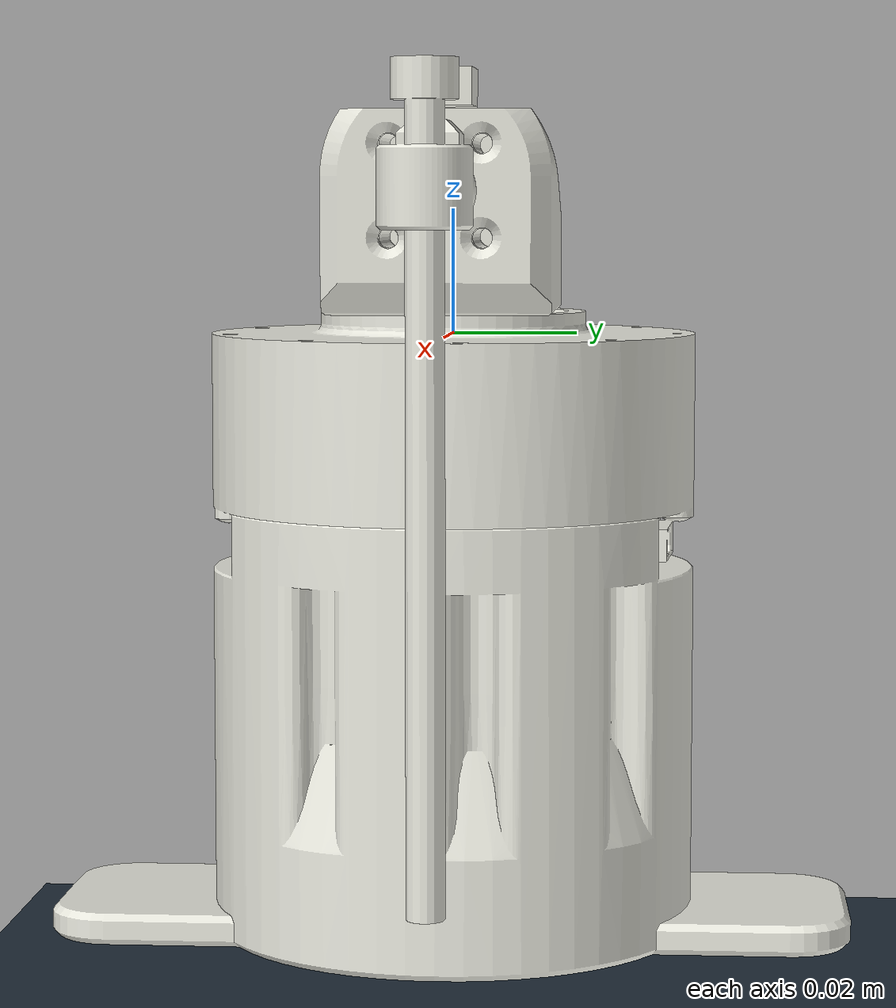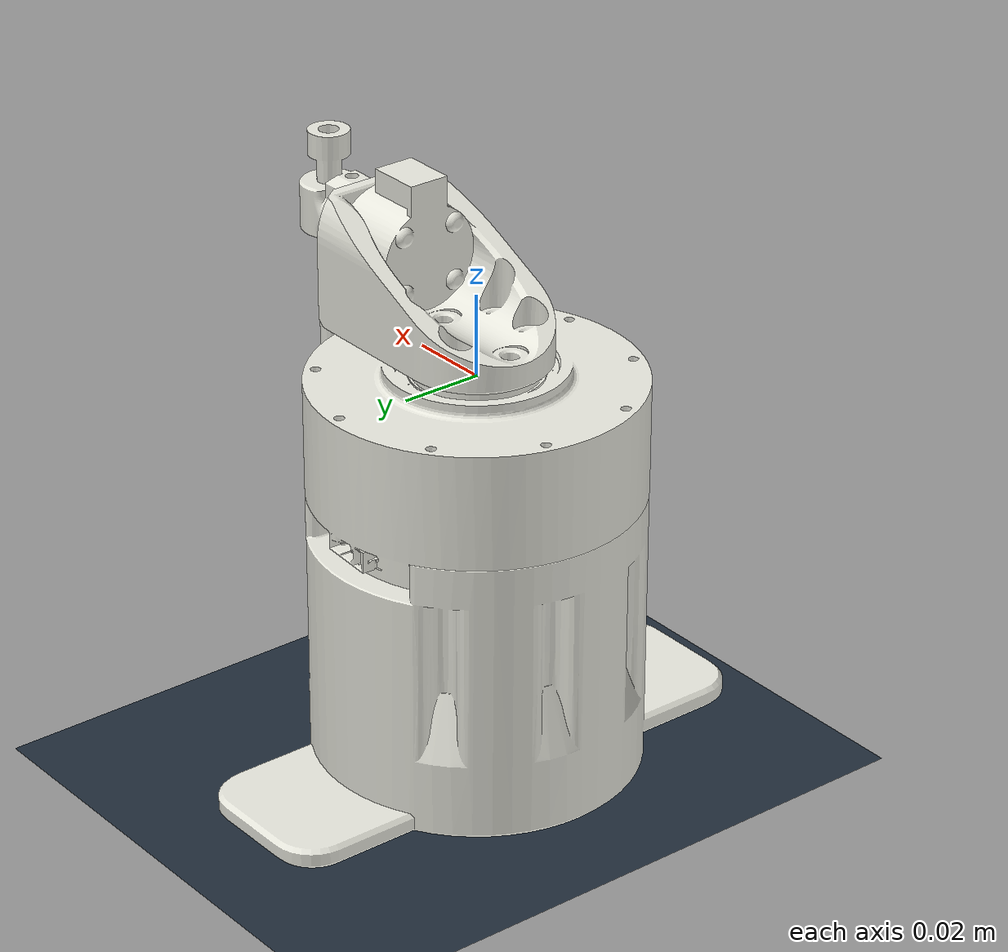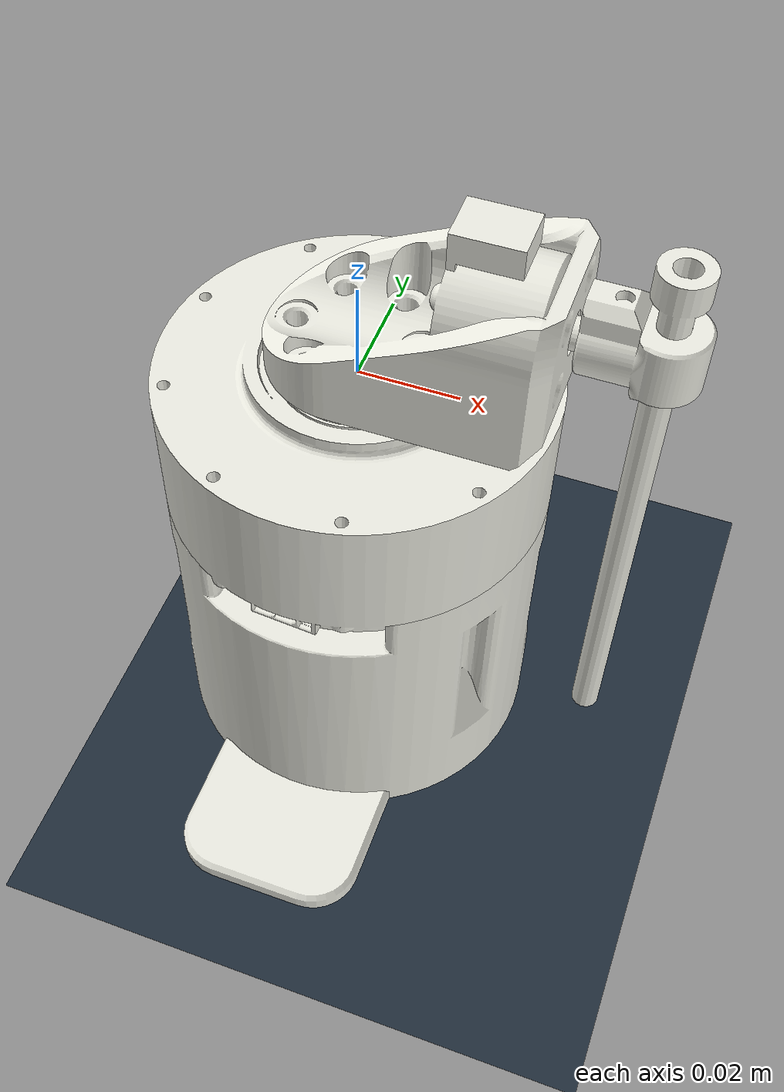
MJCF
<?xml version='1.0' encoding='utf-8'?>
<mujoco model="Inverse">
  <compiler angle="radian" />

  <statistic center="0.011 0 -0.028" extent="0.09" />

  <visual>
    <headlight diffuse="0.8 0.8 0.8" ambient="0.3 0.3 0.3" specular="0.3 0.3 0.3" />
    <rgba haze="0.15 0.25 0.35 1" />
    <scale jointlength="0.006" jointwidth="0.0006" actuatorlength="0.006" actuatorwidth="0.0006" framelength="0.01" framewidth="0.0005" />
  </visual>

  <asset>
    <texture name="skybox" type="skybox" builtin="gradient" rgb1="0.04 0.06 0.08" rgb2="0 0 0" width="512" height="3072" />
    <texture name="grid" type="2d" builtin="checker" rgb1="0.18 0.24 0.30" rgb2="0.08 0.12 0.16" width="512" height="512" />
    <material name="floor_grid" texture="grid" texrepeat="8 8" reflectance="0.18" />
    <material name="robot_white" rgba="0.92 0.92 0.88 1" />
    <mesh name="base_link" content_type="model/stl" file="meshes/base_link.stl" />
    <mesh name="Robstride_S02_1" content_type="model/stl" file="meshes/Robstride_S02_1.stl" />
    <mesh name="Rotor_1" content_type="model/stl" file="meshes/Rotor_1.stl" />
    <mesh name="BoldHolder_1" content_type="model/stl" file="meshes/BoldHolder_1.stl" />
    <mesh name="Bolt_1" content_type="model/stl" file="meshes/Bolt_1.stl" />
    <mesh name="EN25-ABZ-256_1" content_type="model/stl" file="meshes/EN25-ABZ-256_1.stl" />
  </asset>

  <worldbody>
    <light name="key" pos="0.25 -0.6 0.8" dir="-0.25 0.6 -0.8" diffuse="1 1 1" />
    <light name="fill" pos="-0.4 0.3 0.5" dir="0.4 -0.3 -0.5" diffuse="0.35 0.35 0.35" />
    <camera name="front" pos="0.011 -0.28 -0.028" xyaxes="1 0 0 0 0 1" />
    <camera name="side" pos="0.28 0 -0.028" xyaxes="0 1 0 0 0 1" />
    <geom name="floor" type="plane" pos="0 0 -0.105" size="0.35 0.35 0.01" material="floor_grid" />
    <geom type="mesh" contype="0" conaffinity="0" group="1" density="0" material="robot_white" mesh="base_link" />
    <geom type="mesh" material="robot_white" mesh="base_link" />
    <geom type="mesh" contype="0" conaffinity="0" group="1" density="0" material="robot_white" mesh="Robstride_S02_1" />
    <geom type="mesh" material="robot_white" mesh="Robstride_S02_1" />
    <body name="Rotor_1" pos="0 0 0.004">
      <inertial pos="-0.000641237 0.020861 0.0151062" quat="0.140212 0.634222 -0.437725 0.621692" mass="0.053175" diaginertia="4.07858e-05 3.80533e-05 8.48022e-06" />
      <joint name="Revolute 3" pos="0 0 0" axis="0 0 -1" damping="0" armature="0.003" frictionloss="0.125" />
      <geom pos="0 0 -0.004" type="mesh" contype="0" conaffinity="0" group="1" density="0" material="robot_white" mesh="Rotor_1" />
      <geom pos="0 0 -0.004" type="mesh" material="robot_white" mesh="Rotor_1" />
      <geom pos="0 0 -0.004" type="mesh" contype="0" conaffinity="0" group="1" density="0" material="robot_white" mesh="EN25-ABZ-256_1" />
      <geom pos="0 0 -0.004" type="mesh" material="robot_white" mesh="EN25-ABZ-256_1" />
      <body name="BoldHolder_1" pos="0.0504 0 0.0188">
        <inertial pos="0.00370047 -6.17952e-08 -0.0309348" quat="0.707069 -0.0073221 -0.0073221 0.707069" mass="0.0301" diaginertia="4.31983e-05 4.29845e-05 5.42231e-07" />
        <joint name="Revolute 5" pos="0 0 0" axis="-1 0 0" damping="0.000015" frictionloss="0.000000" armature="0.0000042" />
        <geom pos="-0.0504 0 -0.0228" type="mesh" contype="0" conaffinity="0" group="1" density="0" material="robot_white" mesh="BoldHolder_1" />
        <geom pos="-0.0504 0 -0.0228" type="mesh" material="robot_white" mesh="BoldHolder_1" />
        <geom pos="-0.0504 0 -0.0228" type="mesh" contype="0" conaffinity="0" group="1" density="0" material="robot_white" mesh="Bolt_1" />
        <geom pos="-0.0504 0 -0.0228" type="mesh" material="robot_white" mesh="Bolt_1" />
      </body>
    </body>
  </worldbody>

  <actuator>
    <position name="position_revolute_3" joint="Revolute 3" kp="20.0" kv="0.502" ctrlrange="-3.14159265359 3.14159265359" forcelimited="true" forcerange="-17 17" />
  </actuator>
</mujoco>
